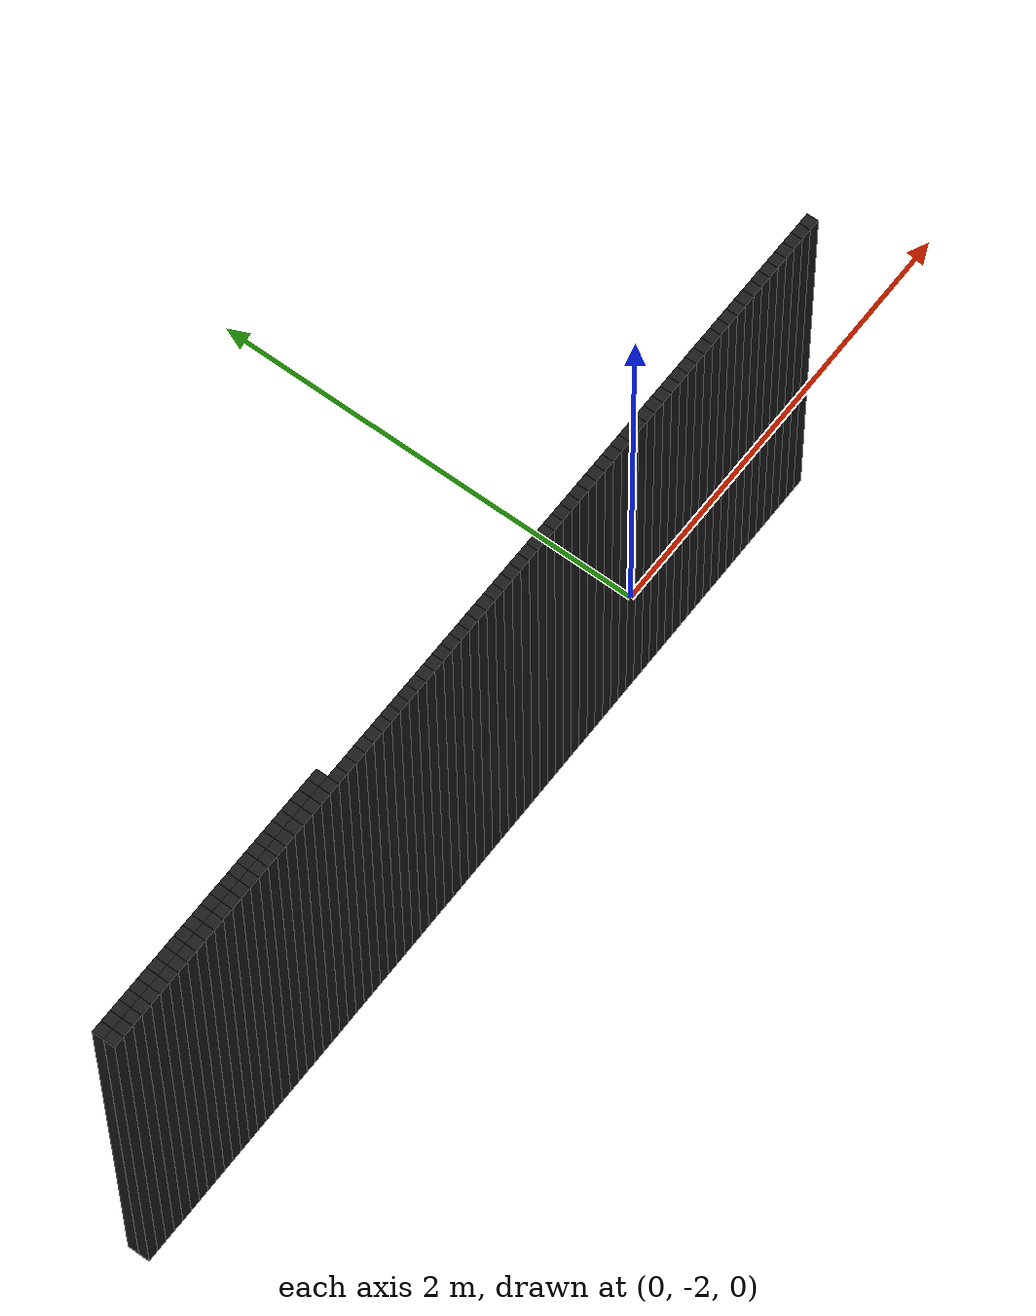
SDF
<sdf version="1.6">
 <model name="obstacle_25_210">
  <pose>-3.26 -2.1500000000000004 1.0 0 0 0</pose>
  <static>true</static>
  <link name="box_link">
   <collision name="box_collision"><geometry><box><size>0.05 0.05 2.0</size></box></geometry></collision>
   <visual name="box_visual">
    <geometry><box><size>0.05 0.05 2.0</size></box></geometry>
    <material><ambient>0 0 0 1</ambient><diffuse>0.1 0.1 0.1 1</diffuse></material>
   </visual>
  </link>
 </model>
 <model name="obstacle_26_210">
  <pose>-3.21 -2.1500000000000004 1.0 0 0 0</pose>
  <static>true</static>
  <link name="box_link">
   <collision name="box_collision"><geometry><box><size>0.05 0.05 2.0</size></box></geometry></collision>
   <visual name="box_visual">
    <geometry><box><size>0.05 0.05 2.0</size></box></geometry>
    <material><ambient>0 0 0 1</ambient><diffuse>0.1 0.1 0.1 1</diffuse></material>
   </visual>
  </link>
 </model>
 <model name="obstacle_27_210">
  <pose>-3.1599999999999997 -2.1500000000000004 1.0 0 0 0</pose>
  <static>true</static>
  <link name="box_link">
   <collision name="box_collision"><geometry><box><size>0.05 0.05 2.0</size></box></geometry></collision>
   <visual name="box_visual">
    <geometry><box><size>0.05 0.05 2.0</size></box></geometry>
    <material><ambient>0 0 0 1</ambient><diffuse>0.1 0.1 0.1 1</diffuse></material>
   </visual>
  </link>
 </model>
 <model name="obstacle_28_210">
  <pose>-3.1099999999999994 -2.1500000000000004 1.0 0 0 0</pose>
  <static>true</static>
  <link name="box_link">
   <collision name="box_collision"><geometry><box><size>0.05 0.05 2.0</size></box></geometry></collision>
   <visual name="box_visual">
    <geometry><box><size>0.05 0.05 2.0</size></box></geometry>
    <material><ambient>0 0 0 1</ambient><diffuse>0.1 0.1 0.1 1</diffuse></material>
   </visual>
  </link>
 </model>
 <model name="obstacle_29_210">
  <pose>-3.0599999999999996 -2.1500000000000004 1.0 0 0 0</pose>
  <static>true</static>
  <link name="box_link">
   <collision name="box_collision"><geometry><box><size>0.05 0.05 2.0</size></box></geometry></collision>
   <visual name="box_visual">
    <geometry><box><size>0.05 0.05 2.0</size></box></geometry>
    <material><ambient>0 0 0 1</ambient><diffuse>0.1 0.1 0.1 1</diffuse></material>
   </visual>
  </link>
 </model>
 <model name="obstacle_30_210">
  <pose>-3.01 -2.1500000000000004 1.0 0 0 0</pose>
  <static>true</static>
  <link name="box_link">
   <collision name="box_collision"><geometry><box><size>0.05 0.05 2.0</size></box></geometry></collision>
   <visual name="box_visual">
    <geometry><box><size>0.05 0.05 2.0</size></box></geometry>
    <material><ambient>0 0 0 1</ambient><diffuse>0.1 0.1 0.1 1</diffuse></material>
   </visual>
  </link>
 </model>
 <model name="obstacle_31_210">
  <pose>-2.96 -2.1500000000000004 1.0 0 0 0</pose>
  <static>true</static>
  <link name="box_link">
   <collision name="box_collision"><geometry><box><size>0.05 0.05 2.0</size></box></geometry></collision>
   <visual name="box_visual">
    <geometry><box><size>0.05 0.05 2.0</size></box></geometry>
    <material><ambient>0 0 0 1</ambient><diffuse>0.1 0.1 0.1 1</diffuse></material>
   </visual>
  </link>
 </model>
 <model name="obstacle_32_210">
  <pose>-2.9099999999999997 -2.1500000000000004 1.0 0 0 0</pose>
  <static>true</static>
  <link name="box_link">
   <collision name="box_collision"><geometry><box><size>0.05 0.05 2.0</size></box></geometry></collision>
   <visual name="box_visual">
    <geometry><box><size>0.05 0.05 2.0</size></box></geometry>
    <material><ambient>0 0 0 1</ambient><diffuse>0.1 0.1 0.1 1</diffuse></material>
   </visual>
  </link>
 </model>
 <model name="obstacle_33_210">
  <pose>-2.8599999999999994 -2.1500000000000004 1.0 0 0 0</pose>
  <static>true</static>
  <link name="box_link">
   <collision name="box_collision"><geometry><box><size>0.05 0.05 2.0</size></box></geometry></collision>
   <visual name="box_visual">
    <geometry><box><size>0.05 0.05 2.0</size></box></geometry>
    <material><ambient>0 0 0 1</ambient><diffuse>0.1 0.1 0.1 1</diffuse></material>
   </visual>
  </link>
 </model>
 <model name="obstacle_34_210">
  <pose>-2.8099999999999996 -2.1500000000000004 1.0 0 0 0</pose>
  <static>true</static>
  <link name="box_link">
   <collision name="box_collision"><geometry><box><size>0.05 0.05 2.0</size></box></geometry></collision>
   <visual name="box_visual">
    <geometry><box><size>0.05 0.05 2.0</size></box></geometry>
    <material><ambient>0 0 0 1</ambient><diffuse>0.1 0.1 0.1 1</diffuse></material>
   </visual>
  </link>
 </model>
 <model name="obstacle_35_210">
  <pose>-2.76 -2.1500000000000004 1.0 0 0 0</pose>
  <static>true</static>
  <link name="box_link">
   <collision name="box_collision"><geometry><box><size>0.05 0.05 2.0</size></box></geometry></collision>
   <visual name="box_visual">
    <geometry><box><size>0.05 0.05 2.0</size></box></geometry>
    <material><ambient>0 0 0 1</ambient><diffuse>0.1 0.1 0.1 1</diffuse></material>
   </visual>
  </link>
 </model>
 <model name="obstacle_36_210">
  <pose>-2.71 -2.1500000000000004 1.0 0 0 0</pose>
  <static>true</static>
  <link name="box_link">
   <collision name="box_collision"><geometry><box><size>0.05 0.05 2.0</size></box></geometry></collision>
   <visual name="box_visual">
    <geometry><box><size>0.05 0.05 2.0</size></box></geometry>
    <material><ambient>0 0 0 1</ambient><diffuse>0.1 0.1 0.1 1</diffuse></material>
   </visual>
  </link>
 </model>
 <model name="obstacle_37_210">
  <pose>-2.6599999999999997 -2.1500000000000004 1.0 0 0 0</pose>
  <static>true</static>
  <link name="box_link">
   <collision name="box_collision"><geometry><box><size>0.05 0.05 2.0</size></box></geometry></collision>
   <visual name="box_visual">
    <geometry><box><size>0.05 0.05 2.0</size></box></geometry>
    <material><ambient>0 0 0 1</ambient><diffuse>0.1 0.1 0.1 1</diffuse></material>
   </visual>
  </link>
 </model>
 <model name="obstacle_38_210">
  <pose>-2.6099999999999994 -2.1500000000000004 1.0 0 0 0</pose>
  <static>true</static>
  <link name="box_link">
   <collision name="box_collision"><geometry><box><size>0.05 0.05 2.0</size></box></geometry></collision>
   <visual name="box_visual">
    <geometry><box><size>0.05 0.05 2.0</size></box></geometry>
    <material><ambient>0 0 0 1</ambient><diffuse>0.1 0.1 0.1 1</diffuse></material>
   </visual>
  </link>
 </model>
 <model name="obstacle_39_210">
  <pose>-2.5599999999999996 -2.1500000000000004 1.0 0 0 0</pose>
  <static>true</static>
  <link name="box_link">
   <collision name="box_collision"><geometry><box><size>0.05 0.05 2.0</size></box></geometry></collision>
   <visual name="box_visual">
    <geometry><box><size>0.05 0.05 2.0</size></box></geometry>
    <material><ambient>0 0 0 1</ambient><diffuse>0.1 0.1 0.1 1</diffuse></material>
   </visual>
  </link>
 </model>
 <model name="obstacle_40_210">
  <pose>-2.51 -2.1500000000000004 1.0 0 0 0</pose>
  <static>true</static>
  <link name="box_link">
   <collision name="box_collision"><geometry><box><size>0.05 0.05 2.0</size></box></geometry></collision>
   <visual name="box_visual">
    <geometry><box><size>0.05 0.05 2.0</size></box></geometry>
    <material><ambient>0 0 0 1</ambient><diffuse>0.1 0.1 0.1 1</diffuse></material>
   </visual>
  </link>
 </model>
 <model name="obstacle_41_210">
  <pose>-2.4599999999999995 -2.1500000000000004 1.0 0 0 0</pose>
  <static>true</static>
  <link name="box_link">
   <collision name="box_collision"><geometry><box><size>0.05 0.05 2.0</size></box></geometry></collision>
   <visual name="box_visual">
    <geometry><box><size>0.05 0.05 2.0</size></box></geometry>
    <material><ambient>0 0 0 1</ambient><diffuse>0.1 0.1 0.1 1</diffuse></material>
   </visual>
  </link>
 </model>
 <model name="obstacle_42_210">
  <pose>-2.4099999999999997 -2.1500000000000004 1.0 0 0 0</pose>
  <static>true</static>
  <link name="box_link">
   <collision name="box_collision"><geometry><box><size>0.05 0.05 2.0</size></box></geometry></collision>
   <visual name="box_visual">
    <geometry><box><size>0.05 0.05 2.0</size></box></geometry>
    <material><ambient>0 0 0 1</ambient><diffuse>0.1 0.1 0.1 1</diffuse></material>
   </visual>
  </link>
 </model>
 <model name="obstacle_43_210">
  <pose>-2.36 -2.1500000000000004 1.0 0 0 0</pose>
  <static>true</static>
  <link name="box_link">
   <collision name="box_collision"><geometry><box><size>0.05 0.05 2.0</size></box></geometry></collision>
   <visual name="box_visual">
    <geometry><box><size>0.05 0.05 2.0</size></box></geometry>
    <material><ambient>0 0 0 1</ambient><diffuse>0.1 0.1 0.1 1</diffuse></material>
   </visual>
  </link>
 </model>
 <model name="obstacle_44_210">
  <pose>-2.3099999999999996 -2.1500000000000004 1.0 0 0 0</pose>
  <static>true</static>
  <link name="box_link">
   <collision name="box_collision"><geometry><box><size>0.05 0.05 2.0</size></box></geometry></collision>
   <visual name="box_visual">
    <geometry><box><size>0.05 0.05 2.0</size></box></geometry>
    <material><ambient>0 0 0 1</ambient><diffuse>0.1 0.1 0.1 1</diffuse></material>
   </visual>
  </link>
 </model>
 <model name="obstacle_45_210">
  <pose>-2.26 -2.1500000000000004 1.0 0 0 0</pose>
  <static>true</static>
  <link name="box_link">
   <collision name="box_collision"><geometry><box><size>0.05 0.05 2.0</size></box></geometry></collision>
   <visual name="box_visual">
    <geometry><box><size>0.05 0.05 2.0</size></box></geometry>
    <material><ambient>0 0 0 1</ambient><diffuse>0.1 0.1 0.1 1</diffuse></material>
   </visual>
  </link>
 </model>
 <model name="obstacle_46_210">
  <pose>-2.2099999999999995 -2.1500000000000004 1.0 0 0 0</pose>
  <static>true</static>
  <link name="box_link">
   <collision name="box_collision"><geometry><box><size>0.05 0.05 2.0</size></box></geometry></collision>
   <visual name="box_visual">
    <geometry><box><size>0.05 0.05 2.0</size></box></geometry>
    <material><ambient>0 0 0 1</ambient><diffuse>0.1 0.1 0.1 1</diffuse></material>
   </visual>
  </link>
 </model>
 <model name="obstacle_47_210">
  <pose>-2.1599999999999997 -2.1500000000000004 1.0 0 0 0</pose>
  <static>true</static>
  <link name="box_link">
   <collision name="box_collision"><geometry><box><size>0.05 0.05 2.0</size></box></geometry></collision>
   <visual name="box_visual">
    <geometry><box><size>0.05 0.05 2.0</size></box></geometry>
    <material><ambient>0 0 0 1</ambient><diffuse>0.1 0.1 0.1 1</diffuse></material>
   </visual>
  </link>
 </model>
 <model name="obstacle_48_210">
  <pose>-2.1099999999999994 -2.1500000000000004 1.0 0 0 0</pose>
  <static>true</static>
  <link name="box_link">
   <collision name="box_collision"><geometry><box><size>0.05 0.05 2.0</size></box></geometry></collision>
   <visual name="box_visual">
    <geometry><box><size>0.05 0.05 2.0</size></box></geometry>
    <material><ambient>0 0 0 1</ambient><diffuse>0.1 0.1 0.1 1</diffuse></material>
   </visual>
  </link>
 </model>
 <model name="obstacle_49_210">
  <pose>-2.0599999999999996 -2.1500000000000004 1.0 0 0 0</pose>
  <static>true</static>
  <link name="box_link">
   <collision name="box_collision"><geometry><box><size>0.05 0.05 2.0</size></box></geometry></collision>
   <visual name="box_visual">
    <geometry><box><size>0.05 0.05 2.0</size></box></geometry>
    <material><ambient>0 0 0 1</ambient><diffuse>0.1 0.1 0.1 1</diffuse></material>
   </visual>
  </link>
 </model>
 <model name="obstacle_25_211">
  <pose>-3.26 -2.2 1.0 0 0 0</pose>
  <static>true</static>
  <link name="box_link">
   <collision name="box_collision"><geometry><box><size>0.05 0.05 2.0</size></box></geometry></collision>
   <visual name="box_visual">
    <geometry><box><size>0.05 0.05 2.0</size></box></geometry>
    <material><ambient>0 0 0 1</ambient><diffuse>0.1 0.1 0.1 1</diffuse></material>
   </visual>
  </link>
 </model>
 <model name="obstacle_26_211">
  <pose>-3.21 -2.2 1.0 0 0 0</pose>
  <static>true</static>
  <link name="box_link">
   <collision name="box_collision"><geometry><box><size>0.05 0.05 2.0</size></box></geometry></collision>
   <visual name="box_visual">
    <geometry><box><size>0.05 0.05 2.0</size></box></geometry>
    <material><ambient>0 0 0 1</ambient><diffuse>0.1 0.1 0.1 1</diffuse></material>
   </visual>
  </link>
 </model>
 <model name="obstacle_27_211">
  <pose>-3.1599999999999997 -2.2 1.0 0 0 0</pose>
  <static>true</static>
  <link name="box_link">
   <collision name="box_collision"><geometry><box><size>0.05 0.05 2.0</size></box></geometry></collision>
   <visual name="box_visual">
    <geometry><box><size>0.05 0.05 2.0</size></box></geometry>
    <material><ambient>0 0 0 1</ambient><diffuse>0.1 0.1 0.1 1</diffuse></material>
   </visual>
  </link>
 </model>
 <model name="obstacle_28_211">
  <pose>-3.1099999999999994 -2.2 1.0 0 0 0</pose>
  <static>true</static>
  <link name="box_link">
   <collision name="box_collision"><geometry><box><size>0.05 0.05 2.0</size></box></geometry></collision>
   <visual name="box_visual">
    <geometry><box><size>0.05 0.05 2.0</size></box></geometry>
    <material><ambient>0 0 0 1</ambient><diffuse>0.1 0.1 0.1 1</diffuse></material>
   </visual>
  </link>
 </model>
 <model name="obstacle_29_211">
  <pose>-3.0599999999999996 -2.2 1.0 0 0 0</pose>
  <static>true</static>
  <link name="box_link">
   <collision name="box_collision"><geometry><box><size>0.05 0.05 2.0</size></box></geometry></collision>
   <visual name="box_visual">
    <geometry><box><size>0.05 0.05 2.0</size></box></geometry>
    <material><ambient>0 0 0 1</ambient><diffuse>0.1 0.1 0.1 1</diffuse></material>
   </visual>
  </link>
 </model>
 <model name="obstacle_30_211">
  <pose>-3.01 -2.2 1.0 0 0 0</pose>
  <static>true</static>
  <link name="box_link">
   <collision name="box_collision"><geometry><box><size>0.05 0.05 2.0</size></box></geometry></collision>
   <visual name="box_visual">
    <geometry><box><size>0.05 0.05 2.0</size></box></geometry>
    <material><ambient>0 0 0 1</ambient><diffuse>0.1 0.1 0.1 1</diffuse></material>
   </visual>
  </link>
 </model>
 <model name="obstacle_31_211">
  <pose>-2.96 -2.2 1.0 0 0 0</pose>
  <static>true</static>
  <link name="box_link">
   <collision name="box_collision"><geometry><box><size>0.05 0.05 2.0</size></box></geometry></collision>
   <visual name="box_visual">
    <geometry><box><size>0.05 0.05 2.0</size></box></geometry>
    <material><ambient>0 0 0 1</ambient><diffuse>0.1 0.1 0.1 1</diffuse></material>
   </visual>
  </link>
 </model>
 <model name="obstacle_32_211">
  <pose>-2.9099999999999997 -2.2 1.0 0 0 0</pose>
  <static>true</static>
  <link name="box_link">
   <collision name="box_collision"><geometry><box><size>0.05 0.05 2.0</size></box></geometry></collision>
   <visual name="box_visual">
    <geometry><box><size>0.05 0.05 2.0</size></box></geometry>
    <material><ambient>0 0 0 1</ambient><diffuse>0.1 0.1 0.1 1</diffuse></material>
   </visual>
  </link>
 </model>
 <model name="obstacle_33_211">
  <pose>-2.8599999999999994 -2.2 1.0 0 0 0</pose>
  <static>true</static>
  <link name="box_link">
   <collision name="box_collision"><geometry><box><size>0.05 0.05 2.0</size></box></geometry></collision>
   <visual name="box_visual">
    <geometry><box><size>0.05 0.05 2.0</size></box></geometry>
    <material><ambient>0 0 0 1</ambient><diffuse>0.1 0.1 0.1 1</diffuse></material>
   </visual>
  </link>
 </model>
 <model name="obstacle_34_211">
  <pose>-2.8099999999999996 -2.2 1.0 0 0 0</pose>
  <static>true</static>
  <link name="box_link">
   <collision name="box_collision"><geometry><box><size>0.05 0.05 2.0</size></box></geometry></collision>
   <visual name="box_visual">
    <geometry><box><size>0.05 0.05 2.0</size></box></geometry>
    <material><ambient>0 0 0 1</ambient><diffuse>0.1 0.1 0.1 1</diffuse></material>
   </visual>
  </link>
 </model>
 <model name="obstacle_35_211">
  <pose>-2.76 -2.2 1.0 0 0 0</pose>
  <static>true</static>
  <link name="box_link">
   <collision name="box_collision"><geometry><box><size>0.05 0.05 2.0</size></box></geometry></collision>
   <visual name="box_visual">
    <geometry><box><size>0.05 0.05 2.0</size></box></geometry>
    <material><ambient>0 0 0 1</ambient><diffuse>0.1 0.1 0.1 1</diffuse></material>
   </visual>
  </link>
 </model>
 <model name="obstacle_36_211">
  <pose>-2.71 -2.2 1.0 0 0 0</pose>
  <static>true</static>
  <link name="box_link">
   <collision name="box_collision"><geometry><box><size>0.05 0.05 2.0</size></box></geometry></collision>
   <visual name="box_visual">
    <geometry><box><size>0.05 0.05 2.0</size></box></geometry>
    <material><ambient>0 0 0 1</ambient><diffuse>0.1 0.1 0.1 1</diffuse></material>
   </visual>
  </link>
 </model>
 <model name="obstacle_37_211">
  <pose>-2.6599999999999997 -2.2 1.0 0 0 0</pose>
  <static>true</static>
  <link name="box_link">
   <collision name="box_collision"><geometry><box><size>0.05 0.05 2.0</size></box></geometry></collision>
   <visual name="box_visual">
    <geometry><box><size>0.05 0.05 2.0</size></box></geometry>
    <material><ambient>0 0 0 1</ambient><diffuse>0.1 0.1 0.1 1</diffuse></material>
   </visual>
  </link>
 </model>
 <model name="obstacle_38_211">
  <pose>-2.6099999999999994 -2.2 1.0 0 0 0</pose>
  <static>true</static>
  <link name="box_link">
   <collision name="box_collision"><geometry><box><size>0.05 0.05 2.0</size></box></geometry></collision>
   <visual name="box_visual">
    <geometry><box><size>0.05 0.05 2.0</size></box></geometry>
    <material><ambient>0 0 0 1</ambient><diffuse>0.1 0.1 0.1 1</diffuse></material>
   </visual>
  </link>
 </model>
 <model name="obstacle_39_211">
  <pose>-2.5599999999999996 -2.2 1.0 0 0 0</pose>
  <static>true</static>
  <link name="box_link">
   <collision name="box_collision"><geometry><box><size>0.05 0.05 2.0</size></box></geometry></collision>
   <visual name="box_visual">
    <geometry><box><size>0.05 0.05 2.0</size></box></geometry>
    <material><ambient>0 0 0 1</ambient><diffuse>0.1 0.1 0.1 1</diffuse></material>
   </visual>
  </link>
 </model>
 <model name="obstacle_40_211">
  <pose>-2.51 -2.2 1.0 0 0 0</pose>
  <static>true</static>
  <link name="box_link">
   <collision name="box_collision"><geometry><box><size>0.05 0.05 2.0</size></box></geometry></collision>
   <visual name="box_visual">
    <geometry><box><size>0.05 0.05 2.0</size></box></geometry>
    <material><ambient>0 0 0 1</ambient><diffuse>0.1 0.1 0.1 1</diffuse></material>
   </visual>
  </link>
 </model>
 <model name="obstacle_41_211">
  <pose>-2.4599999999999995 -2.2 1.0 0 0 0</pose>
  <static>true</static>
  <link name="box_link">
   <collision name="box_collision"><geometry><box><size>0.05 0.05 2.0</size></box></geometry></collision>
   <visual name="box_visual">
    <geometry><box><size>0.05 0.05 2.0</size></box></geometry>
    <material><ambient>0 0 0 1</ambient><diffuse>0.1 0.1 0.1 1</diffuse></material>
   </visual>
  </link>
 </model>
 <model name="obstacle_42_211">
  <pose>-2.4099999999999997 -2.2 1.0 0 0 0</pose>
  <static>true</static>
  <link name="box_link">
   <collision name="box_collision"><geometry><box><size>0.05 0.05 2.0</size></box></geometry></collision>
   <visual name="box_visual">
    <geometry><box><size>0.05 0.05 2.0</size></box></geometry>
    <material><ambient>0 0 0 1</ambient><diffuse>0.1 0.1 0.1 1</diffuse></material>
   </visual>
  </link>
 </model>
 <model name="obstacle_43_211">
  <pose>-2.36 -2.2 1.0 0 0 0</pose>
  <static>true</static>
  <link name="box_link">
   <collision name="box_collision"><geometry><box><size>0.05 0.05 2.0</size></box></geometry></collision>
   <visual name="box_visual">
    <geometry><box><size>0.05 0.05 2.0</size></box></geometry>
    <material><ambient>0 0 0 1</ambient><diffuse>0.1 0.1 0.1 1</diffuse></material>
   </visual>
  </link>
 </model>
 <model name="obstacle_44_211">
  <pose>-2.3099999999999996 -2.2 1.0 0 0 0</pose>
  <static>true</static>
  <link name="box_link">
   <collision name="box_collision"><geometry><box><size>0.05 0.05 2.0</size></box></geometry></collision>
   <visual name="box_visual">
    <geometry><box><size>0.05 0.05 2.0</size></box></geometry>
    <material><ambient>0 0 0 1</ambient><diffuse>0.1 0.1 0.1 1</diffuse></material>
   </visual>
  </link>
 </model>
 <model name="obstacle_45_211">
  <pose>-2.26 -2.2 1.0 0 0 0</pose>
  <static>true</static>
  <link name="box_link">
   <collision name="box_collision"><geometry><box><size>0.05 0.05 2.0</size></box></geometry></collision>
   <visual name="box_visual">
    <geometry><box><size>0.05 0.05 2.0</size></box></geometry>
    <material><ambient>0 0 0 1</ambient><diffuse>0.1 0.1 0.1 1</diffuse></material>
   </visual>
  </link>
 </model>
 <model name="obstacle_46_211">
  <pose>-2.2099999999999995 -2.2 1.0 0 0 0</pose>
  <static>true</static>
  <link name="box_link">
   <collision name="box_collision"><geometry><box><size>0.05 0.05 2.0</size></box></geometry></collision>
   <visual name="box_visual">
    <geometry><box><size>0.05 0.05 2.0</size></box></geometry>
    <material><ambient>0 0 0 1</ambient><diffuse>0.1 0.1 0.1 1</diffuse></material>
   </visual>
  </link>
 </model>
 <model name="obstacle_47_211">
  <pose>-2.1599999999999997 -2.2 1.0 0 0 0</pose>
  <static>true</static>
  <link name="box_link">
   <collision name="box_collision"><geometry><box><size>0.05 0.05 2.0</size></box></geometry></collision>
   <visual name="box_visual">
    <geometry><box><size>0.05 0.05 2.0</size></box></geometry>
    <material><ambient>0 0 0 1</ambient><diffuse>0.1 0.1 0.1 1</diffuse></material>
   </visual>
  </link>
 </model>
 <model name="obstacle_48_211">
  <pose>-2.1099999999999994 -2.2 1.0 0 0 0</pose>
  <static>true</static>
  <link name="box_link">
   <collision name="box_collision"><geometry><box><size>0.05 0.05 2.0</size></box></geometry></collision>
   <visual name="box_visual">
    <geometry><box><size>0.05 0.05 2.0</size></box></geometry>
    <material><ambient>0 0 0 1</ambient><diffuse>0.1 0.1 0.1 1</diffuse></material>
   </visual>
  </link>
 </model>
 <model name="obstacle_49_211">
  <pose>-2.0599999999999996 -2.2 1.0 0 0 0</pose>
  <static>true</static>
  <link name="box_link">
   <collision name="box_collision"><geometry><box><size>0.05 0.05 2.0</size></box></geometry></collision>
   <visual name="box_visual">
    <geometry><box><size>0.05 0.05 2.0</size></box></geometry>
    <material><ambient>0 0 0 1</ambient><diffuse>0.1 0.1 0.1 1</diffuse></material>
   </visual>
  </link>
 </model>
 <model name="obstacle_50_211">
  <pose>-2.01 -2.2 1.0 0 0 0</pose>
  <static>true</static>
  <link name="box_link">
   <collision name="box_collision"><geometry><box><size>0.05 0.05 2.0</size></box></geometry></collision>
   <visual name="box_visual">
    <geometry><box><size>0.05 0.05 2.0</size></box></geometry>
    <material><ambient>0 0 0 1</ambient><diffuse>0.1 0.1 0.1 1</diffuse></material>
   </visual>
  </link>
 </model>
 <model name="obstacle_51_211">
  <pose>-1.9599999999999995 -2.2 1.0 0 0 0</pose>
  <static>true</static>
  <link name="box_link">
   <collision name="box_collision"><geometry><box><size>0.05 0.05 2.0</size></box></geometry></collision>
   <visual name="box_visual">
    <geometry><box><size>0.05 0.05 2.0</size></box></geometry>
    <material><ambient>0 0 0 1</ambient><diffuse>0.1 0.1 0.1 1</diffuse></material>
   </visual>
  </link>
 </model>
 <model name="obstacle_52_211">
  <pose>-1.9099999999999997 -2.2 1.0 0 0 0</pose>
  <static>true</static>
  <link name="box_link">
   <collision name="box_collision"><geometry><box><size>0.05 0.05 2.0</size></box></geometry></collision>
   <visual name="box_visual">
    <geometry><box><size>0.05 0.05 2.0</size></box></geometry>
    <material><ambient>0 0 0 1</ambient><diffuse>0.1 0.1 0.1 1</diffuse></material>
   </visual>
  </link>
 </model>
 <model name="obstacle_53_211">
  <pose>-1.8599999999999994 -2.2 1.0 0 0 0</pose>
  <static>true</static>
  <link name="box_link">
   <collision name="box_collision"><geometry><box><size>0.05 0.05 2.0</size></box></geometry></collision>
   <visual name="box_visual">
    <geometry><box><size>0.05 0.05 2.0</size></box></geometry>
    <material><ambient>0 0 0 1</ambient><diffuse>0.1 0.1 0.1 1</diffuse></material>
   </visual>
  </link>
 </model>
 <model name="obstacle_54_211">
  <pose>-1.8099999999999996 -2.2 1.0 0 0 0</pose>
  <static>true</static>
  <link name="box_link">
   <collision name="box_collision"><geometry><box><size>0.05 0.05 2.0</size></box></geometry></collision>
   <visual name="box_visual">
    <geometry><box><size>0.05 0.05 2.0</size></box></geometry>
    <material><ambient>0 0 0 1</ambient><diffuse>0.1 0.1 0.1 1</diffuse></material>
   </visual>
  </link>
 </model>
 <model name="obstacle_55_211">
  <pose>-1.7599999999999998 -2.2 1.0 0 0 0</pose>
  <static>true</static>
  <link name="box_link">
   <collision name="box_collision"><geometry><box><size>0.05 0.05 2.0</size></box></geometry></collision>
   <visual name="box_visual">
    <geometry><box><size>0.05 0.05 2.0</size></box></geometry>
    <material><ambient>0 0 0 1</ambient><diffuse>0.1 0.1 0.1 1</diffuse></material>
   </visual>
  </link>
 </model>
 <model name="obstacle_56_211">
  <pose>-1.7099999999999995 -2.2 1.0 0 0 0</pose>
  <static>true</static>
  <link name="box_link">
   <collision name="box_collision"><geometry><box><size>0.05 0.05 2.0</size></box></geometry></collision>
   <visual name="box_visual">
    <geometry><box><size>0.05 0.05 2.0</size></box></geometry>
    <material><ambient>0 0 0 1</ambient><diffuse>0.1 0.1 0.1 1</diffuse></material>
   </visual>
  </link>
 </model>
 <model name="obstacle_57_211">
  <pose>-1.6599999999999997 -2.2 1.0 0 0 0</pose>
  <static>true</static>
  <link name="box_link">
   <collision name="box_collision"><geometry><box><size>0.05 0.05 2.0</size></box></geometry></collision>
   <visual name="box_visual">
    <geometry><box><size>0.05 0.05 2.0</size></box></geometry>
    <material><ambient>0 0 0 1</ambient><diffuse>0.1 0.1 0.1 1</diffuse></material>
   </visual>
  </link>
 </model>
 <model name="obstacle_58_211">
  <pose>-1.6099999999999994 -2.2 1.0 0 0 0</pose>
  <static>true</static>
  <link name="box_link">
   <collision name="box_collision"><geometry><box><size>0.05 0.05 2.0</size></box></geometry></collision>
   <visual name="box_visual">
    <geometry><box><size>0.05 0.05 2.0</size></box></geometry>
    <material><ambient>0 0 0 1</ambient><diffuse>0.1 0.1 0.1 1</diffuse></material>
   </visual>
  </link>
 </model>
 <model name="obstacle_59_211">
  <pose>-1.5599999999999996 -2.2 1.0 0 0 0</pose>
  <static>true</static>
  <link name="box_link">
   <collision name="box_collision"><geometry><box><size>0.05 0.05 2.0</size></box></geometry></collision>
   <visual name="box_visual">
    <geometry><box><size>0.05 0.05 2.0</size></box></geometry>
    <material><ambient>0 0 0 1</ambient><diffuse>0.1 0.1 0.1 1</diffuse></material>
   </visual>
  </link>
 </model>
 <model name="obstacle_60_211">
  <pose>-1.5099999999999998 -2.2 1.0 0 0 0</pose>
  <static>true</static>
  <link name="box_link">
   <collision name="box_collision"><geometry><box><size>0.05 0.05 2.0</size></box></geometry></collision>
   <visual name="box_visual">
    <geometry><box><size>0.05 0.05 2.0</size></box></geometry>
    <material><ambient>0 0 0 1</ambient><diffuse>0.1 0.1 0.1 1</diffuse></material>
   </visual>
  </link>
 </model>
 <model name="obstacle_61_211">
  <pose>-1.4599999999999995 -2.2 1.0 0 0 0</pose>
  <static>true</static>
  <link name="box_link">
   <collision name="box_collision"><geometry><box><size>0.05 0.05 2.0</size></box></geometry></collision>
   <visual name="box_visual">
    <geometry><box><size>0.05 0.05 2.0</size></box></geometry>
    <material><ambient>0 0 0 1</ambient><diffuse>0.1 0.1 0.1 1</diffuse></material>
   </visual>
  </link>
 </model>
 <model name="obstacle_62_211">
  <pose>-1.4099999999999997 -2.2 1.0 0 0 0</pose>
  <static>true</static>
  <link name="box_link">
   <collision name="box_collision"><geometry><box><size>0.05 0.05 2.0</size></box></geometry></collision>
   <visual name="box_visual">
    <geometry><box><size>0.05 0.05 2.0</size></box></geometry>
    <material><ambient>0 0 0 1</ambient><diffuse>0.1 0.1 0.1 1</diffuse></material>
   </visual>
  </link>
 </model>
 <model name="obstacle_63_211">
  <pose>-1.3599999999999994 -2.2 1.0 0 0 0</pose>
  <static>true</static>
  <link name="box_link">
   <collision name="box_collision"><geometry><box><size>0.05 0.05 2.0</size></box></geometry></collision>
   <visual name="box_visual">
    <geometry><box><size>0.05 0.05 2.0</size></box></geometry>
    <material><ambient>0 0 0 1</ambient><diffuse>0.1 0.1 0.1 1</diffuse></material>
   </visual>
  </link>
 </model>
 <model name="obstacle_64_211">
  <pose>-1.3099999999999996 -2.2 1.0 0 0 0</pose>
  <static>true</static>
  <link name="box_link">
   <collision name="box_collision"><geometry><box><size>0.05 0.05 2.0</size></box></geometry></collision>
   <visual name="box_visual">
    <geometry><box><size>0.05 0.05 2.0</size></box></geometry>
    <material><ambient>0 0 0 1</ambient><diffuse>0.1 0.1 0.1 1</diffuse></material>
   </visual>
  </link>
 </model>
 <model name="obstacle_65_211">
  <pose>-1.2599999999999998 -2.2 1.0 0 0 0</pose>
  <static>true</static>
  <link name="box_link">
   <collision name="box_collision"><geometry><box><size>0.05 0.05 2.0</size></box></geometry></collision>
   <visual name="box_visual">
    <geometry><box><size>0.05 0.05 2.0</size></box></geometry>
    <material><ambient>0 0 0 1</ambient><diffuse>0.1 0.1 0.1 1</diffuse></material>
   </visual>
  </link>
 </model>
 <model name="obstacle_66_211">
  <pose>-1.2099999999999995 -2.2 1.0 0 0 0</pose>
  <static>true</static>
  <link name="box_link">
   <collision name="box_collision"><geometry><box><size>0.05 0.05 2.0</size></box></geometry></collision>
   <visual name="box_visual">
    <geometry><box><size>0.05 0.05 2.0</size></box></geometry>
    <material><ambient>0 0 0 1</ambient><diffuse>0.1 0.1 0.1 1</diffuse></material>
   </visual>
  </link>
 </model>
 <model name="obstacle_67_211">
  <pose>-1.1599999999999997 -2.2 1.0 0 0 0</pose>
  <static>true</static>
  <link name="box_link">
   <collision name="box_collision"><geometry><box><size>0.05 0.05 2.0</size></box></geometry></collision>
   <visual name="box_visual">
    <geometry><box><size>0.05 0.05 2.0</size></box></geometry>
    <material><ambient>0 0 0 1</ambient><diffuse>0.1 0.1 0.1 1</diffuse></material>
   </visual>
  </link>
 </model>
 <model name="obstacle_68_211">
  <pose>-1.1099999999999994 -2.2 1.0 0 0 0</pose>
  <static>true</static>
  <link name="box_link">
   <collision name="box_collision"><geometry><box><size>0.05 0.05 2.0</size></box></geometry></collision>
   <visual name="box_visual">
    <geometry><box><size>0.05 0.05 2.0</size></box></geometry>
    <material><ambient>0 0 0 1</ambient><diffuse>0.1 0.1 0.1 1</diffuse></material>
   </visual>
  </link>
 </model>
 <model name="obstacle_69_211">
  <pose>-1.0599999999999996 -2.2 1.0 0 0 0</pose>
  <static>true</static>
  <link name="box_link">
   <collision name="box_collision"><geometry><box><size>0.05 0.05 2.0</size></box></geometry></collision>
   <visual name="box_visual">
    <geometry><box><size>0.05 0.05 2.0</size></box></geometry>
    <material><ambient>0 0 0 1</ambient><diffuse>0.1 0.1 0.1 1</diffuse></material>
   </visual>
  </link>
 </model>
 <model name="obstacle_70_211">
  <pose>-1.0099999999999998 -2.2 1.0 0 0 0</pose>
  <static>true</static>
  <link name="box_link">
   <collision name="box_collision"><geometry><box><size>0.05 0.05 2.0</size></box></geometry></collision>
   <visual name="box_visual">
    <geometry><box><size>0.05 0.05 2.0</size></box></geometry>
    <material><ambient>0 0 0 1</ambient><diffuse>0.1 0.1 0.1 1</diffuse></material>
   </visual>
  </link>
 </model>
 <model name="obstacle_71_211">
  <pose>-0.9599999999999995 -2.2 1.0 0 0 0</pose>
  <static>true</static>
  <link name="box_link">
   <collision name="box_collision"><geometry><box><size>0.05 0.05 2.0</size></box></geometry></collision>
   <visual name="box_visual">
    <geometry><box><size>0.05 0.05 2.0</size></box></geometry>
    <material><ambient>0 0 0 1</ambient><diffuse>0.1 0.1 0.1 1</diffuse></material>
   </visual>
  </link>
 </model>
 <model name="obstacle_72_211">
  <pose>-0.9099999999999997 -2.2 1.0 0 0 0</pose>
  <static>true</static>
  <link name="box_link">
   <collision name="box_collision"><geometry><box><size>0.05 0.05 2.0</size></box></geometry></collision>
   <visual name="box_visual">
    <geometry><box><size>0.05 0.05 2.0</size></box></geometry>
    <material><ambient>0 0 0 1</ambient><diffuse>0.1 0.1 0.1 1</diffuse></material>
   </visual>
  </link>
 </model>
 <model name="obstacle_73_211">
  <pose>-0.8599999999999994 -2.2 1.0 0 0 0</pose>
  <static>true</static>
  <link name="box_link">
   <collision name="box_collision"><geometry><box><size>0.05 0.05 2.0</size></box></geometry></collision>
   <visual name="box_visual">
    <geometry><box><size>0.05 0.05 2.0</size></box></geometry>
    <material><ambient>0 0 0 1</ambient><diffuse>0.1 0.1 0.1 1</diffuse></material>
   </visual>
  </link>
 </model>
 <model name="obstacle_74_211">
  <pose>-0.8099999999999996 -2.2 1.0 0 0 0</pose>
  <static>true</static>
  <link name="box_link">
   <collision name="box_collision"><geometry><box><size>0.05 0.05 2.0</size></box></geometry></collision>
   <visual name="box_visual">
    <geometry><box><size>0.05 0.05 2.0</size></box></geometry>
    <material><ambient>0 0 0 1</ambient><diffuse>0.1 0.1 0.1 1</diffuse></material>
   </visual>
  </link>
 </model>
 <model name="obstacle_75_211">
  <pose>-0.7599999999999998 -2.2 1.0 0 0 0</pose>
  <static>true</static>
  <link name="box_link">
   <collision name="box_collision"><geometry><box><size>0.05 0.05 2.0</size></box></geometry></collision>
   <visual name="box_visual">
    <geometry><box><size>0.05 0.05 2.0</size></box></geometry>
    <material><ambient>0 0 0 1</ambient><diffuse>0.1 0.1 0.1 1</diffuse></material>
   </visual>
  </link>
 </model>
 <model name="obstacle_76_211">
  <pose>-0.7099999999999995 -2.2 1.0 0 0 0</pose>
  <static>true</static>
  <link name="box_link">
   <collision name="box_collision"><geometry><box><size>0.05 0.05 2.0</size></box></geometry></collision>
   <visual name="box_visual">
    <geometry><box><size>0.05 0.05 2.0</size></box></geometry>
    <material><ambient>0 0 0 1</ambient><diffuse>0.1 0.1 0.1 1</diffuse></material>
   </visual>
  </link>
 </model>
 <model name="obstacle_77_211">
  <pose>-0.6599999999999997 -2.2 1.0 0 0 0</pose>
  <static>true</static>
  <link name="box_link">
   <collision name="box_collision"><geometry><box><size>0.05 0.05 2.0</size></box></geometry></collision>
   <visual name="box_visual">
    <geometry><box><size>0.05 0.05 2.0</size></box></geometry>
    <material><ambient>0 0 0 1</ambient><diffuse>0.1 0.1 0.1 1</diffuse></material>
   </visual>
  </link>
 </model>
 <model name="obstacle_78_211">
  <pose>-0.6099999999999994 -2.2 1.0 0 0 0</pose>
  <static>true</static>
  <link name="box_link">
   <collision name="box_collision"><geometry><box><size>0.05 0.05 2.0</size></box></geometry></collision>
   <visual name="box_visual">
    <geometry><box><size>0.05 0.05 2.0</size></box></geometry>
    <material><ambient>0 0 0 1</ambient><diffuse>0.1 0.1 0.1 1</diffuse></material>
   </visual>
  </link>
 </model>
 <model name="obstacle_79_211">
  <pose>-0.5599999999999996 -2.2 1.0 0 0 0</pose>
  <static>true</static>
  <link name="box_link">
   <collision name="box_collision"><geometry><box><size>0.05 0.05 2.0</size></box></geometry></collision>
   <visual name="box_visual">
    <geometry><box><size>0.05 0.05 2.0</size></box></geometry>
    <material><ambient>0 0 0 1</ambient><diffuse>0.1 0.1 0.1 1</diffuse></material>
   </visual>
  </link>
 </model>
 <model name="obstacle_80_211">
  <pose>-0.5099999999999998 -2.2 1.0 0 0 0</pose>
  <static>true</static>
  <link name="box_link">
   <collision name="box_collision"><geometry><box><size>0.05 0.05 2.0</size></box></geometry></collision>
   <visual name="box_visual">
    <geometry><box><size>0.05 0.05 2.0</size></box></geometry>
    <material><ambient>0 0 0 1</ambient><diffuse>0.1 0.1 0.1 1</diffuse></material>
   </visual>
  </link>
 </model>
 <model name="obstacle_81_211">
  <pose>-0.45999999999999996 -2.2 1.0 0 0 0</pose>
  <static>true</static>
  <link name="box_link">
   <collision name="box_collision"><geometry><box><size>0.05 0.05 2.0</size></box></geometry></collision>
   <visual name="box_visual">
    <geometry><box><size>0.05 0.05 2.0</size></box></geometry>
    <material><ambient>0 0 0 1</ambient><diffuse>0.1 0.1 0.1 1</diffuse></material>
   </visual>
  </link>
 </model>
 <model name="obstacle_82_211">
  <pose>-0.40999999999999925 -2.2 1.0 0 0 0</pose>
  <static>true</static>
  <link name="box_link">
   <collision name="box_collision"><geometry><box><size>0.05 0.05 2.0</size></box></geometry></collision>
   <visual name="box_visual">
    <geometry><box><size>0.05 0.05 2.0</size></box></geometry>
    <material><ambient>0 0 0 1</ambient><diffuse>0.1 0.1 0.1 1</diffuse></material>
   </visual>
  </link>
 </model>
 <model name="obstacle_83_211">
  <pose>-0.35999999999999943 -2.2 1.0 0 0 0</pose>
  <static>true</static>
  <link name="box_link">
   <collision name="box_collision"><geometry><box><size>0.05 0.05 2.0</size></box></geometry></collision>
   <visual name="box_visual">
    <geometry><box><size>0.05 0.05 2.0</size></box></geometry>
    <material><ambient>0 0 0 1</ambient><diffuse>0.1 0.1 0.1 1</diffuse></material>
   </visual>
  </link>
 </model>
 <model name="obstacle_84_211">
  <pose>-0.3099999999999996 -2.2 1.0 0 0 0</pose>
  <static>true</static>
  <link name="box_link">
   <collision name="box_collision"><geometry><box><size>0.05 0.05 2.0</size></box></geometry></collision>
   <visual name="box_visual">
    <geometry><box><size>0.05 0.05 2.0</size></box></geometry>
    <material><ambient>0 0 0 1</ambient><diffuse>0.1 0.1 0.1 1</diffuse></material>
   </visual>
  </link>
 </model>
 <model name="obstacle_85_211">
  <pose>-0.2599999999999998 -2.2 1.0 0 0 0</pose>
  <static>true</static>
  <link name="box_link">
   <collision name="box_collision"><geometry><box><size>0.05 0.05 2.0</size></box></geometry></collision>
   <visual name="box_visual">
    <geometry><box><size>0.05 0.05 2.0</size></box></geometry>
    <material><ambient>0 0 0 1</ambient><diffuse>0.1 0.1 0.1 1</diffuse></material>
   </visual>
  </link>
 </model>
 <model name="obstacle_86_211">
  <pose>-0.20999999999999996 -2.2 1.0 0 0 0</pose>
  <static>true</static>
  <link name="box_link">
   <collision name="box_collision"><geometry><box><size>0.05 0.05 2.0</size></box></geometry></collision>
   <visual name="box_visual">
    <geometry><box><size>0.05 0.05 2.0</size></box></geometry>
    <material><ambient>0 0 0 1</ambient><diffuse>0.1 0.1 0.1 1</diffuse></material>
   </visual>
  </link>
 </model>
 <model name="obstacle_87_211">
  <pose>-0.15999999999999925 -2.2 1.0 0 0 0</pose>
  <static>true</static>
  <link name="box_link">
   <collision name="box_collision"><geometry><box><size>0.05 0.05 2.0</size></box></geometry></collision>
   <visual name="box_visual">
    <geometry><box><size>0.05 0.05 2.0</size></box></geometry>
    <material><ambient>0 0 0 1</ambient><diffuse>0.1 0.1 0.1 1</diffuse></material>
   </visual>
  </link>
 </model>
 <model name="obstacle_88_211">
  <pose>-0.10999999999999943 -2.2 1.0 0 0 0</pose>
  <static>true</static>
  <link name="box_link">
   <collision name="box_collision"><geometry><box><size>0.05 0.05 2.0</size></box></geometry></collision>
   <visual name="box_visual">
    <geometry><box><size>0.05 0.05 2.0</size></box></geometry>
    <material><ambient>0 0 0 1</ambient><diffuse>0.1 0.1 0.1 1</diffuse></material>
   </visual>
  </link>
 </model>
 <model name="obstacle_89_211">
  <pose>-0.05999999999999961 -2.2 1.0 0 0 0</pose>
  <static>true</static>
  <link name="box_link">
   <collision name="box_collision"><geometry><box><size>0.05 0.05 2.0</size></box></geometry></collision>
   <visual name="box_visual">
    <geometry><box><size>0.05 0.05 2.0</size></box></geometry>
    <material><ambient>0 0 0 1</ambient><diffuse>0.1 0.1 0.1 1</diffuse></material>
   </visual>
  </link>
 </model>
 <model name="obstacle_90_211">
  <pose>-0.009999999999999787 -2.2 1.0 0 0 0</pose>
  <static>true</static>
  <link name="box_link">
   <collision name="box_collision"><geometry><box><size>0.05 0.05 2.0</size></box></geometry></collision>
   <visual name="box_visual">
    <geometry><box><size>0.05 0.05 2.0</size></box></geometry>
    <material><ambient>0 0 0 1</ambient><diffuse>0.1 0.1 0.1 1</diffuse></material>
   </visual>
  </link>
 </model>
 <model name="obstacle_91_211">
  <pose>0.040000000000000036 -2.2 1.0 0 0 0</pose>
  <static>true</static>
  <link name="box_link">
   <collision name="box_collision"><geometry><box><size>0.05 0.05 2.0</size></box></geometry></collision>
   <visual name="box_visual">
    <geometry><box><size>0.05 0.05 2.0</size></box></geometry>
    <material><ambient>0 0 0 1</ambient><diffuse>0.1 0.1 0.1 1</diffuse></material>
   </visual>
  </link>
 </model>
 <model name="obstacle_92_211">
  <pose>0.09000000000000075 -2.2 1.0 0 0 0</pose>
  <static>true</static>
  <link name="box_link">
   <collision name="box_collision"><geometry><box><size>0.05 0.05 2.0</size></box></geometry></collision>
   <visual name="box_visual">
    <geometry><box><size>0.05 0.05 2.0</size></box></geometry>
    <material><ambient>0 0 0 1</ambient><diffuse>0.1 0.1 0.1 1</diffuse></material>
   </visual>
  </link>
 </model>
 <model name="obstacle_93_211">
  <pose>0.14000000000000057 -2.2 1.0 0 0 0</pose>
  <static>true</static>
  <link name="box_link">
   <collision name="box_collision"><geometry><box><size>0.05 0.05 2.0</size></box></geometry></collision>
   <visual name="box_visual">
    <geometry><box><size>0.05 0.05 2.0</size></box></geometry>
    <material><ambient>0 0 0 1</ambient><diffuse>0.1 0.1 0.1 1</diffuse></material>
   </visual>
  </link>
 </model>
 <model name="obstacle_94_211">
  <pose>0.1900000000000004 -2.2 1.0 0 0 0</pose>
  <static>true</static>
  <link name="box_link">
   <collision name="box_collision"><geometry><box><size>0.05 0.05 2.0</size></box></geometry></collision>
   <visual name="box_visual">
    <geometry><box><size>0.05 0.05 2.0</size></box></geometry>
    <material><ambient>0 0 0 1</ambient><diffuse>0.1 0.1 0.1 1</diffuse></material>
   </visual>
  </link>
 </model>
 <model name="obstacle_95_211">
  <pose>0.2400000000000002 -2.2 1.0 0 0 0</pose>
  <static>true</static>
  <link name="box_link">
   <collision name="box_collision"><geometry><box><size>0.05 0.05 2.0</size></box></geometry></collision>
   <visual name="box_visual">
    <geometry><box><size>0.05 0.05 2.0</size></box></geometry>
    <material><ambient>0 0 0 1</ambient><diffuse>0.1 0.1 0.1 1</diffuse></material>
   </visual>
  </link>
 </model>
 <model name="obstacle_96_211">
  <pose>0.2900000000000009 -2.2 1.0 0 0 0</pose>
  <static>true</static>
  <link name="box_link">
   <collision name="box_collision"><geometry><box><size>0.05 0.05 2.0</size></box></geometry></collision>
   <visual name="box_visual">
    <geometry><box><size>0.05 0.05 2.0</size></box></geometry>
    <material><ambient>0 0 0 1</ambient><diffuse>0.1 0.1 0.1 1</diffuse></material>
   </visual>
  </link>
 </model>
 <model name="obstacle_97_211">
  <pose>0.34000000000000075 -2.2 1.0 0 0 0</pose>
  <static>true</static>
  <link name="box_link">
   <collision name="box_collision"><geometry><box><size>0.05 0.05 2.0</size></box></geometry></collision>
   <visual name="box_visual">
    <geometry><box><size>0.05 0.05 2.0</size></box></geometry>
    <material><ambient>0 0 0 1</ambient><diffuse>0.1 0.1 0.1 1</diffuse></material>
   </visual>
  </link>
 </model>
 <model name="obstacle_98_211">
  <pose>0.39000000000000057 -2.2 1.0 0 0 0</pose>
  <static>true</static>
  <link name="box_link">
   <collision name="box_collision"><geometry><box><size>0.05 0.05 2.0</size></box></geometry></collision>
   <visual name="box_visual">
    <geometry><box><size>0.05 0.05 2.0</size></box></geometry>
    <material><ambient>0 0 0 1</ambient><diffuse>0.1 0.1 0.1 1</diffuse></material>
   </visual>
  </link>
 </model>
 <model name="obstacle_99_211">
  <pose>0.4400000000000004 -2.2 1.0 0 0 0</pose>
  <static>true</static>
  <link name="box_link">
   <collision name="box_collision"><geometry><box><size>0.05 0.05 2.0</size></box></geometry></collision>
   <visual name="box_visual">
    <geometry><box><size>0.05 0.05 2.0</size></box></geometry>
    <material><ambient>0 0 0 1</ambient><diffuse>0.1 0.1 0.1 1</diffuse></material>
   </visual>
  </link>
 </model>
 <model name="obstacle_100_211">
  <pose>0.4900000000000002 -2.2 1.0 0 0 0</pose>
  <static>true</static>
  <link name="box_link">
   <collision name="box_collision"><geometry><box><size>0.05 0.05 2.0</size></box></geometry></collision>
   <visual name="box_visual">
    <geometry><box><size>0.05 0.05 2.0</size></box></geometry>
    <material><ambient>0 0 0 1</ambient><diffuse>0.1 0.1 0.1 1</diffuse></material>
   </visual>
  </link>
 </model>
 <model name="obstacle_101_211">
  <pose>0.5400000000000009 -2.2 1.0 0 0 0</pose>
  <static>true</static>
  <link name="box_link">
   <collision name="box_collision"><geometry><box><size>0.05 0.05 2.0</size></box></geometry></collision>
   <visual name="box_visual">
    <geometry><box><size>0.05 0.05 2.0</size></box></geometry>
    <material><ambient>0 0 0 1</ambient><diffuse>0.1 0.1 0.1 1</diffuse></material>
   </visual>
  </link>
 </model>
 <model name="obstacle_102_211">
  <pose>0.5900000000000007 -2.2 1.0 0 0 0</pose>
  <static>true</static>
  <link name="box_link">
   <collision name="box_collision"><geometry><box><size>0.05 0.05 2.0</size></box></geometry></collision>
   <visual name="box_visual">
    <geometry><box><size>0.05 0.05 2.0</size></box></geometry>
    <material><ambient>0 0 0 1</ambient><diffuse>0.1 0.1 0.1 1</diffuse></material>
   </visual>
  </link>
 </model>
 <model name="obstacle_103_211">
  <pose>0.6400000000000006 -2.2 1.0 0 0 0</pose>
  <static>true</static>
  <link name="box_link">
   <collision name="box_collision"><geometry><box><size>0.05 0.05 2.0</size></box></geometry></collision>
   <visual name="box_visual">
    <geometry><box><size>0.05 0.05 2.0</size></box></geometry>
    <material><ambient>0 0 0 1</ambient><diffuse>0.1 0.1 0.1 1</diffuse></material>
   </visual>
  </link>
 </model>
 <model name="obstacle_104_211">
  <pose>0.6900000000000004 -2.2 1.0 0 0 0</pose>
  <static>true</static>
  <link name="box_link">
   <collision name="box_collision"><geometry><box><size>0.05 0.05 2.0</size></box></geometry></collision>
   <visual name="box_visual">
    <geometry><box><size>0.05 0.05 2.0</size></box></geometry>
    <material><ambient>0 0 0 1</ambient><diffuse>0.1 0.1 0.1 1</diffuse></material>
   </visual>
  </link>
 </model>
 <model name="obstacle_105_211">
  <pose>0.7400000000000002 -2.2 1.0 0 0 0</pose>
  <static>true</static>
  <link name="box_link">
   <collision name="box_collision"><geometry><box><size>0.05 0.05 2.0</size></box></geometry></collision>
   <visual name="box_visual">
    <geometry><box><size>0.05 0.05 2.0</size></box></geometry>
    <material><ambient>0 0 0 1</ambient><diffuse>0.1 0.1 0.1 1</diffuse></material>
   </visual>
  </link>
 </model>
 <model name="obstacle_106_211">
  <pose>0.7900000000000009 -2.2 1.0 0 0 0</pose>
  <static>true</static>
  <link name="box_link">
   <collision name="box_collision"><geometry><box><size>0.05 0.05 2.0</size></box></geometry></collision>
   <visual name="box_visual">
    <geometry><box><size>0.05 0.05 2.0</size></box></geometry>
    <material><ambient>0 0 0 1</ambient><diffuse>0.1 0.1 0.1 1</diffuse></material>
   </visual>
  </link>
 </model>
</sdf>
